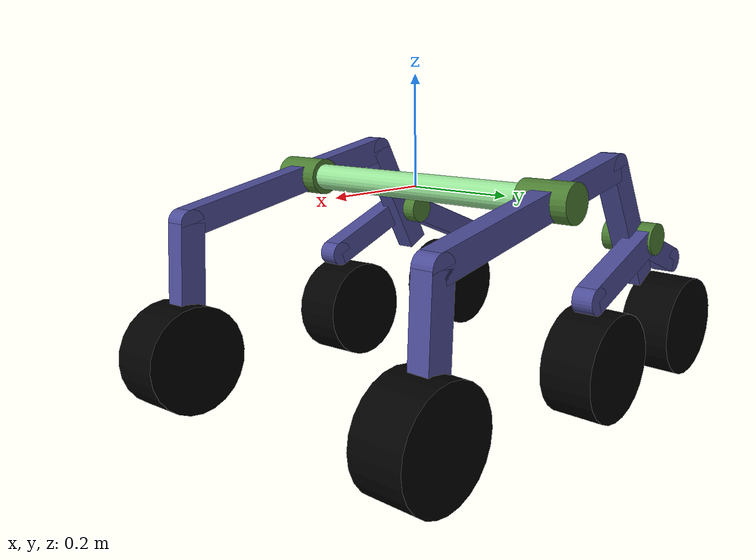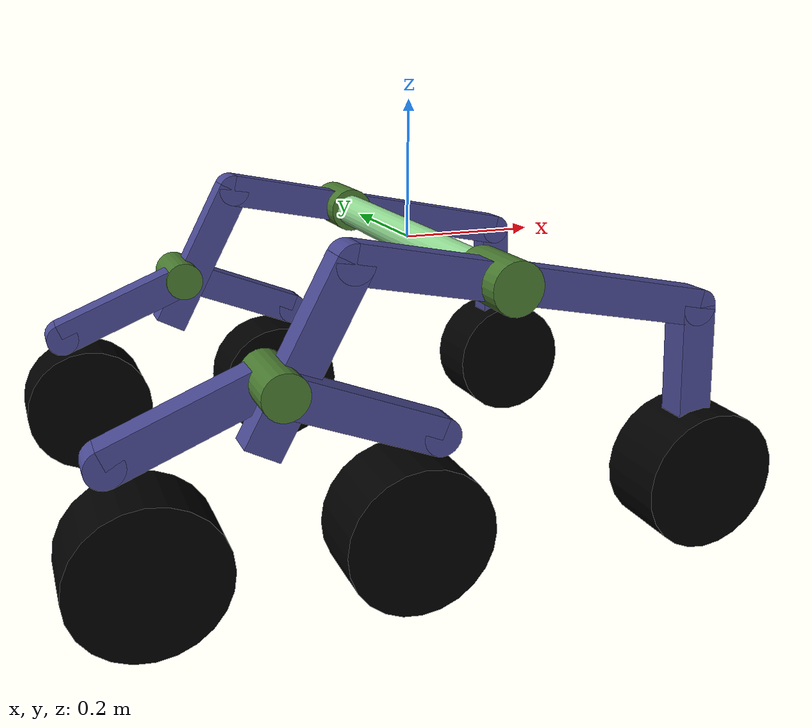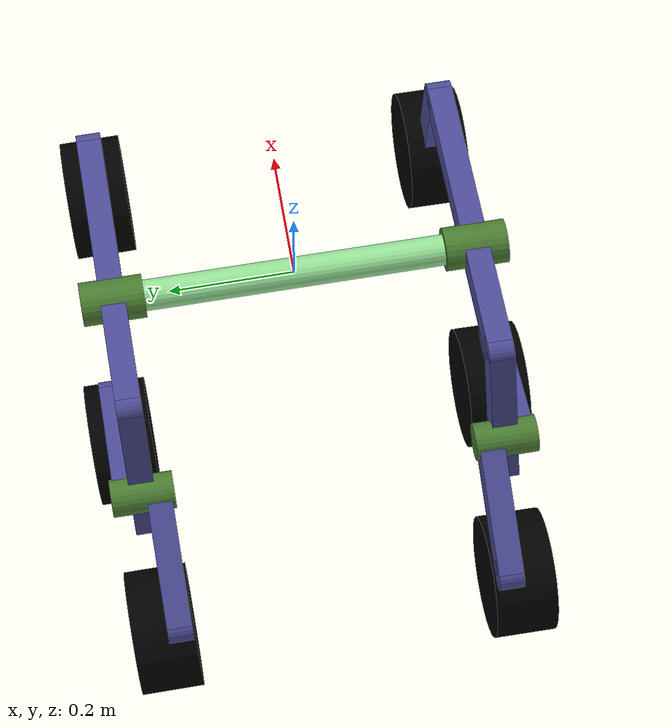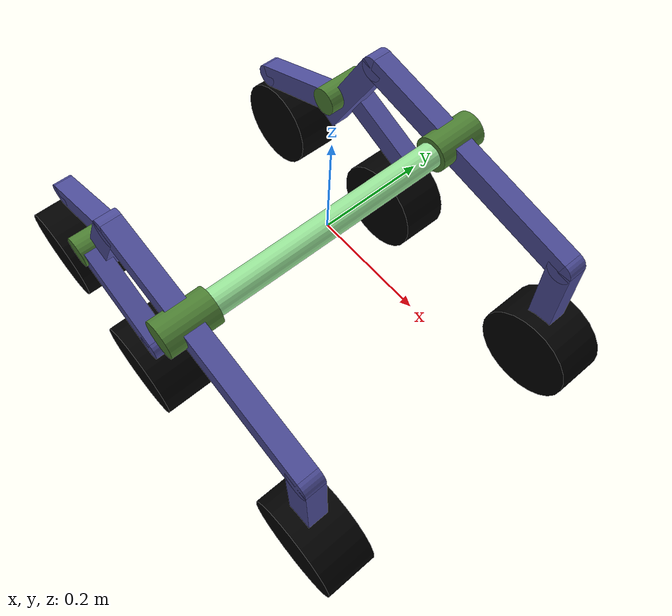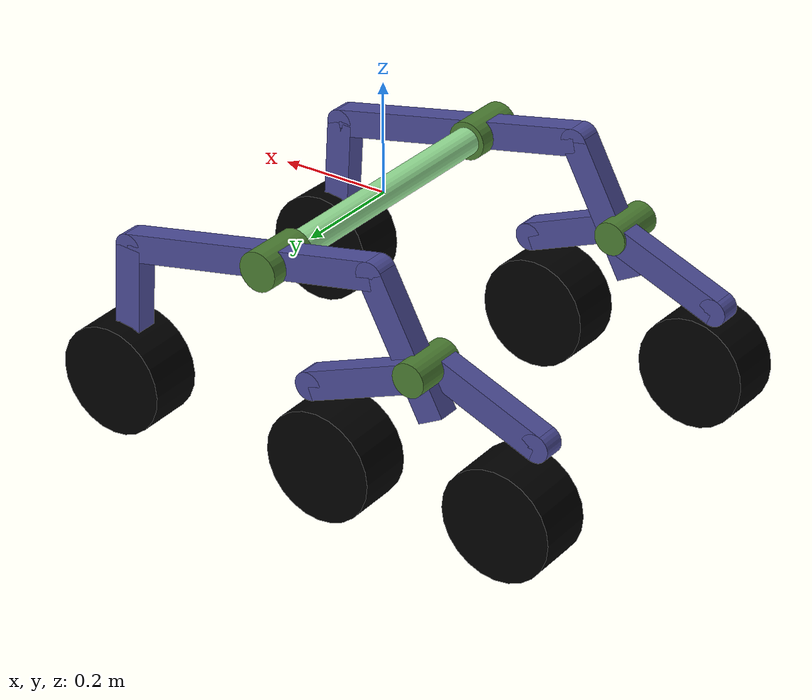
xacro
<?xml version="1.0"?>
<robot xmlns:xacro="http://www.ros.org/wiki/xacro" name="rocker-bogie">

<!-- INCLUDED FILES -->
    <xacro:include filename="rocker/__rocker.xacro"/>
    <xacro:include filename="bogie/__bogie.xacro"/>
    <xacro:include filename="suspension_beam.xacro"/>
    <xacro:include filename="wheel.xacro"/>

<!-- PROPERIES -->
    <!-- SUSPENSION PROPERTIES-->
    <xacro:property name="suspension_width" value=".580"/>

    <xacro:property name="bogie_x" value="-.292"/>
    <xacro:property name="bogie_y" value=" .000"/>
    <xacro:property name="bogie_z" value="-.100"/>

    <xacro:property name="wheel_f_x" value=" .319"/>
    <xacro:property name="wheel_f_y" value=" .000"/>
    <xacro:property name="wheel_f_z" value="-.305"/>

    <xacro:property name="wheel_m_x" value=" .165"/>
    <xacro:property name="wheel_m_y" value=" .020"/>
    <xacro:property name="wheel_m_z" value="-.205"/>

    <xacro:property name="wheel_b_x" value="-.165"/>
    <xacro:property name="wheel_b_y" value="0"/>
    <xacro:property name="wheel_b_z" value="-.205"/>

    <!-- WHEELS POSITIONS -->
    <xacro:property name="wheel_base_f" value=".550"/>
    <xacro:property name="wheel_base_m" value=".600"/>
    <xacro:property name="wheel_base_b" value=".500"/>

    <xacro:property name="h_wheel" value=".250"/>
    <xacro:property name="l_wheel_f" value=".305"/>

    <!-- CUSTOM SIM PROPS -->
    <xacro:property name="h_bogie" value=".170"/>
    <xacro:property name="l_bogie" value=".305"/>
    <xacro:property name="l_wheel_m" value=".200"/>
    <xacro:property name="l_wheel_b" value=".200"/>

    <!-- ELEMENTS DIAMETERS -->
    <xacro:property name="suspension_beam_length" value=".600"/>
    <xacro:property name="suspension_beam_radius" value=".025"/>

    <xacro:property name="rocker_bearing_length" value=".100"/>
    <xacro:property name="rocker_bearing_radius" value=".035"/>

    <xacro:property name="bogie_bearing_length" value=".100"/>
    <xacro:property name="bogie_bearing_radius" value=".030"/>

    <xacro:property name="wheel_width" value=".100"/>
    <xacro:property name="wheel_radius" value=".100"/>

<!-- RELATIVE VARIABLES -->
    <xacro:property name="f_wheel_deviation" value="${(wheel_base_f - wheel_base_m)/2}"/>
    <xacro:property name="b_wheel_deviation" value="${(wheel_base_b - wheel_base_m)/2}"/>
    <xacro:property name="wheel_offset" value=".100"/>

<!-- MAIN LINK -->
    <xacro:suspension_beam name="suspension_beam"/>

<!-- SUSPENSION -->
    <xacro:rocker name="rocker_l" parent="suspension_beam" x="0" y="${suspension_width/2}"    z="0" side="1"/>  <!-- 1 = left -->
    <xacro:rocker name="rocker_r" parent="suspension_beam" x="0" y="${-suspension_width/2}"    z="0" side="-1"/> <!-- -1 = right -->

    <xacro:bogie name="bogie_l" parent="rocker_l_bearing" x="${bogie_x}" y="${bogie_y}"  z="${bogie_z}" side="1"/>
    <xacro:bogie name="bogie_r" parent="rocker_r_bearing" x="${bogie_x}" y="${bogie_y}"  z="${bogie_z}" side="-1"/>

<!-- WHEELS -->
    <xacro:wheel name="fl" parent="rocker_l_bearing" x="${wheel_f_x}" y="${+wheel_f_y}"  z="${wheel_f_z}" side="1"/>
    <xacro:wheel name="fr" parent="rocker_r_bearing" x="${wheel_f_x}" y="${-wheel_f_y}"  z="${wheel_f_z}" side="-1"/>

    <xacro:wheel name="ml" parent="bogie_l_bearing"  x="${wheel_m_x}" y="${+wheel_m_y}"  z="${wheel_m_z}" side="1"/>
    <xacro:wheel name="mr" parent="bogie_r_bearing"  x="${wheel_m_x}" y="${-wheel_m_y}"  z="${wheel_m_z}" side="-1"/>

    <xacro:wheel name="bl" parent="bogie_l_bearing"  x="${wheel_b_x}" y="${+wheel_b_y}"  z="${wheel_b_z}" side="1"/>
    <xacro:wheel name="br" parent="bogie_r_bearing"  x="${wheel_b_x}" y="${-wheel_b_y}"  z="${wheel_b_z}" side="-1"/>

<!-- MY DIFFERENTIAL PLUGIN -->
    <gazebo>
        <plugin name="differential_pid" filename="libDifferentialPID.so">
            <leftJoint>rocker_l_bearing_joint</leftJoint>
            <rightJoint>rocker_r_bearing_joint</rightJoint>
            <topic>/rover/differential_pid</topic>
            <Kp>1000</Kp>
            <Ki>0</Ki>
            <Kd>3000</Kd>
            <limit>10000</limit>
        </plugin>
    </gazebo>

 <!-- DYNAMOMETER PLUGINS -->
    <gazebo>
        <plugin name="rocker_l_bearing_joint_dynamometer" filename="libJointDynamometer.so">
            <joint>rocker_l_bearing_joint</joint>
            <topic>/rover/joint_dynamometer/rocker_l_bearing_joint</topic>
        </plugin>
    </gazebo>

    <gazebo>
        <plugin name="rocker_r_bearing_joint_dynamometer" filename="libJointDynamometer.so">
            <joint>rocker_r_bearing_joint</joint>
            <topic>/rover/joint_dynamometer/rocker_r_bearing_joint</topic>
        </plugin>
    </gazebo>

</robot>

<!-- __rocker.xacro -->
<robot xmlns:xacro="http://www.ros.org/wiki/xacro" name="rocker">

<!-- INCLUDE -->
    <xacro:include filename="rocker_bearing.xacro"/>
    <xacro:include filename="rocker_link1.xacro"/>
    <xacro:include filename="rocker_link2.xacro"/>
    <xacro:include filename="rocker_link3.xacro"/>
    <xacro:include filename="rocker_link_diff.xacro"/>

<!-- PROPERTIES -->
    <xacro:property name="rocker_link1_length"      value=".500"/>
    <xacro:property name="rocker_link1_width"       value=".040"/>
    <xacro:property name="rocker_link1_height"      value=".050"/>
    <xacro:property name="rocker_link1_x"            value=".000"/>
    <xacro:property name="rocker_link1_y"            value=".000"/>
    <xacro:property name="rocker_link1_z"            value=".000"/>
    <xacro:property name="rocker_link1_offset_x"    value=".050"/>
    <xacro:property name="rocker_link1_offset_y"    value=".000"/>
    <xacro:property name="rocker_link1_offset_z"    value=".000"/>
    <xacro:property name="rocker_link1_pitch"        value="-.2"/>

    <xacro:property name="rocker_link2_length"      value=".250"/>
    <xacro:property name="rocker_link2_width"       value=".040"/>
    <xacro:property name="rocker_link2_height"      value=".050"/>
    <xacro:property name="rocker_link2_x"            value="${-rocker_link1_length/2+rocker_link1_offset_x}"/>
    <xacro:property name="rocker_link2_y"            value=".000"/>
    <xacro:property name="rocker_link2_z"            value=".000"/>
    <xacro:property name="rocker_link2_offset_x"    value="${-rocker_link2_length/2}"/>
    <xacro:property name="rocker_link2_offset_y"    value=".000"/>
    <xacro:property name="rocker_link2_offset_z"    value=".000"/>
    <xacro:property name="rocker_link2_pitch"        value="1.28"/>

    <xacro:property name="rocker_link3_length"      value=".190"/>
    <xacro:property name="rocker_link3_width"       value=".040"/>
    <xacro:property name="rocker_link3_height"      value=".050"/>
    <xacro:property name="rocker_link3_x"            value="${rocker_link1_length/2+rocker_link1_offset_x}"/>
    <xacro:property name="rocker_link3_y"            value=".000"/>
    <xacro:property name="rocker_link3_z"            value=".000"/>
    <xacro:property name="rocker_link3_offset_x"    value="${rocker_link3_length/2}"/>
    <xacro:property name="rocker_link3_offset_y"    value=".000"/>
    <xacro:property name="rocker_link3_offset_z"    value=".000"/>
    <xacro:property name="rocker_link3_pitch"        value="-1.31"/>

    <xacro:property name="link_diff_lenght" value=".100"/>
    <xacro:property name="link_diff_radius" value=".005"/>

<!-- LINKS -->

    <xacro:macro name="rocker" params="name parent x y z side">

        <xacro:rocker_bearing name="${name}_bearing" parent="${parent}" x="${x}" y="${y}" z="${z}" side="${side}"/>

        <xacro:rocker_link1 name="${name}_link1" parent="${name}_bearing"
            x="${rocker_link1_x}" y="${-rocker_link1_y}"  z="${rocker_link1_z}"
            pitch="${-rocker_link1_pitch}"/>

        <xacro:rocker_link2 name="${name}_link2" parent="${name}_link1"
            x="${rocker_link2_x}" y="${-rocker_link2_y}"  z="${rocker_link2_z}"
            pitch="${-rocker_link2_pitch}"/>

        <xacro:rocker_link3 name="${name}_link3" parent="${name}_link1"
            x="${rocker_link3_x}" y="${-rocker_link3_y}"  z="${rocker_link3_z}"
            pitch="${-rocker_link3_pitch}"/>

    </xacro:macro>
</robot>

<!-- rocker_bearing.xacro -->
<robot xmlns:xacro="http://www.ros.org/wiki/xacro" name="rocker">

<!-- GEOMETRY -->
    <xacro:macro name="rocker_geometry">
        <origin rpy="1.57075 0 0"/>
        <geometry>
            <cylinder length="${rocker_bearing_length}" radius="${rocker_bearing_radius}"/>
        </geometry>
    </xacro:macro>

<!-- MATERIAL -->
    <xacro:macro name="rocker_material">
        <material name="dark_green">
            <color rgba=".3 .5 .2 1"/>
        </material>
    </xacro:macro>

<!-- LINK -->
    <xacro:macro name="rocker_bearing" params="name parent x y z side">
        <link name="${name}">
            <visual>
                <xacro:rocker_geometry/>
                <xacro:rocker_material/>
            </visual>
            <collision>
                <xacro:rocker_geometry/>
            </collision>
            <inertial>
                <mass value="3"/>
                <xacro:if value="${side == 1}"> <!-- LEFT-->
                    <origin xyz="0.247725 0.035298 -0.066751" rpy="0 0 0"/>
                    <inertia ixx="0.050813" ixy="0.009439" ixz="-0.021963" iyy="0.135830" iyz="0.004023" izz="0.097893"/>
                </xacro:if>
                <xacro:if value="${side == -1}"> <!-- RIGHT-->
                    <origin xyz="0.247727 -0.035298 -0.066751" rpy="0 0 0"/>
                    <inertia ixx="0.050813" ixy="-0.009439" ixz="-0.021960" iyy="0.135831" iyz="-0.004023" izz="0.097894"/>
                </xacro:if>
            </inertial>
        </link>

            <joint name="${name}_joint" type="revolute">
                <parent link="${parent}"/>
                <child link="${name}"/>
                <origin rpy="0 0 0" xyz="${x} ${y} ${z}"/>
                <axis xyz="0 1 0"/>
                <limit effort="10000" velocity="1" lower="-0.5" upper="0.5"/>
                <dynamics damping="2" friction="0"/>
            </joint>

            <gazebo reference="${name}">
                <mu1> .2 </mu1>
                <mu2> .2 </mu2>
                <material> Gazebo/Grey </material>
                <selfCollide> True </selfCollide>
            </gazebo>

    </xacro:macro>

</robot>

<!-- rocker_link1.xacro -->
<robot xmlns:xacro="http://www.ros.org/wiki/xacro" name="rocker_link1">

<!-- GEOMETRY -->
    <xacro:macro name="rocker_link1_geometry_1">
        <origin rpy="0 0 0" xyz="${rocker_link1_offset_x} ${rocker_link1_offset_y} ${rocker_link1_offset_z}" />
        <geometry>
            <box size="${rocker_link1_length} ${rocker_link1_width} ${rocker_link1_height}"/>
        </geometry>
    </xacro:macro>

    <xacro:macro name="rocker_link1_geometry_2">
        <origin rpy="1.57075 0 0" xyz="${-rocker_link1_length/2+rocker_link1_offset_x} ${rocker_link1_offset_y} ${rocker_link1_offset_z}" />
        <geometry>
            <cylinder length="${rocker_link1_width}" radius="${rocker_link1_height/2}"/>
        </geometry>
    </xacro:macro>

    <xacro:macro name="rocker_link1_geometry_3">
        <origin rpy="1.57075 0 0" xyz="${rocker_link1_length/2+rocker_link1_offset_x} ${rocker_link1_offset_y} ${rocker_link1_offset_z}" />
        <geometry>
            <cylinder length="${rocker_link1_width}" radius="${rocker_link1_height/2}"/>
        </geometry>
    </xacro:macro>

<!-- MATERIAL -->
    <xacro:macro name="rocker_link1_material">
        <material name="light_blue">
            <color rgba=".3 .3 .6 1"/>
        </material>
    </xacro:macro>

<!-- LINK -->
    <xacro:macro name="rocker_link1" params="name parent x y z pitch">
        <link name="${name}">
            <visual>
                <xacro:rocker_link1_geometry_1/>
                <xacro:rocker_link1_material/>
            </visual>
            <visual>
                <xacro:rocker_link1_geometry_2/>
                <xacro:rocker_link1_material/>
            </visual>
            <visual>
                <xacro:rocker_link1_geometry_3/>
                <xacro:rocker_link1_material/>
            </visual>
            <collision>
                <xacro:rocker_link1_geometry_1/>
            </collision>
            <collision>
                <xacro:rocker_link1_geometry_2/>
            </collision>
            <collision>
                <xacro:rocker_link1_geometry_3/>
            </collision>
            <inertial>
                 <origin rpy="0 0 0" xyz="${rocker_link1_offset_x} ${rocker_link1_offset_y} ${rocker_link1_offset_z}" />
                 <mass value="0"/>
                 <inertia ixx="0" ixy="0" ixz="0" iyy="0" iyz="0" izz="0"/>
            </inertial>
        </link>
        <gazebo reference="${name}">
            <mu1> .2 </mu1>
            <mu2> .2 </mu2>
            <material> Gazebo/Blue </material>
            <selfCollide>True</selfCollide>
        </gazebo>

        <joint name="${name}_joint" type="fixed">
            <parent link="${parent}"/>
            <child link="${name}"/>
            <origin rpy="0 ${pitch} 0" xyz="${x} ${y} ${z}"/>
        </joint>

    </xacro:macro>
</robot>

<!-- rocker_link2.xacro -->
<robot xmlns:xacro="http://www.ros.org/wiki/xacro" name="rocker_link2">

<!-- GEOMETRY -->
    <xacro:macro name="rocker_link2_geometry">
        <origin rpy="0 0 0" xyz="${rocker_link2_offset_x} ${rocker_link2_offset_y} ${rocker_link2_offset_z} " />
        <geometry>
            <box size="${rocker_link2_length} ${rocker_link2_width} ${rocker_link2_height}"/>
        </geometry>
    </xacro:macro>

<!-- MATERIAL -->
    <xacro:macro name="rocker_link2_material">
        <material name="light_blue">
            <color rgba=".3 .3 .6 1"/>
        </material>
    </xacro:macro>

<!-- LINK -->
    <xacro:macro name="rocker_link2" params="name parent x y z pitch">
        <link name="${name}">
            <visual>
                <xacro:rocker_link2_geometry/>
                <xacro:rocker_link2_material/>
            </visual>x
            <collision>
                <xacro:rocker_link2_geometry/>
            </collision>
            <inertial>
                 <origin rpy="0 0 0" xyz="${rocker_link2_offset_x} ${rocker_link2_offset_y} ${rocker_link2_offset_z}" />
                 <mass value="0"/>
                 <inertia ixx="0" ixy="0" ixz="0" iyy="0" iyz="0" izz="0"/>
            </inertial>
        </link>
        <gazebo reference="${name}">
            <mu1> .2 </mu1>
            <mu2> .2 </mu2>
            <material> Gazebo/Blue </material>
            <selfCollide>True</selfCollide>
        </gazebo>

        <joint name="${name}_joint" type="fixed">
            <parent link="${parent}"/>
            <child link="${name}"/>
            <origin rpy="0 ${pitch} 0" xyz="${x} ${y} ${z}"/>
        </joint>

    </xacro:macro>
</robot>

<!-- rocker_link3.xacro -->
<robot xmlns:xacro="http://www.ros.org/wiki/xacro" name="rocker_link3">

<!-- GEOMETRY -->
    <xacro:macro name="rocker_link3_geometry_1">
        <origin rpy="0 0 0" xyz="${rocker_link3_offset_x} ${rocker_link3_offset_y} ${rocker_link3_offset_z} " />
        <geometry>
            <box size="${rocker_link3_length} ${rocker_link3_width} ${rocker_link3_height}"/>
        </geometry>
    </xacro:macro>

    <xacro:macro name="rocker_link3_geometry_2">
        <origin rpy="1.57075 0 0" xyz="${rocker_link3_length/2 + rocker_link3_offset_x} ${rocker_link3_offset_y} ${rocker_link3_offset_z}" />
        <geometry>
            <cylinder length="${rocker_link3_width}" radius="${rocker_link3_height/2}"/>
        </geometry>
    </xacro:macro>

<!-- MATERIAL -->
    <xacro:macro name="rocker_link3_material">
        <material name="light_blue">
            <color rgba=".3 .3 .6 1"/>
        </material>
    </xacro:macro>

<!-- LINK -->
    <xacro:macro name="rocker_link3" params="name parent x y z pitch">
        <link name="${name}">
            <visual>
                <xacro:rocker_link3_geometry_1/>
                <xacro:rocker_link3_material/>
            </visual>
            <visual>
                <xacro:rocker_link3_geometry_2/>
                <xacro:rocker_link3_material/>
            </visual>
            <collision>
                <xacro:rocker_link3_geometry_1/>
            </collision>
            <collision>
                <xacro:rocker_link3_geometry_2/>
            </collision>
            <inertial>
                 <origin rpy="0 0 0" xyz="${rocker_link3_offset_x} ${rocker_link3_offset_y} ${rocker_link3_offset_z} " />
                 <mass value="2"/>
                 <inertia ixx=".003" ixy="0.000" ixz="0.000" iyy=".003" iyz="0.000" izz=".003"/>
            </inertial>
        </link>
        <gazebo reference="${name}">
            <mu1> .2 </mu1>
            <mu2> .2 </mu2>
            <material> Gazebo/Blue </material>
            <selfCollide>True</selfCollide>
        </gazebo>

        <joint name="${name}_joint" type="fixed">
            <parent link="${parent}"/>
            <child link="${name}"/>
            <origin rpy="0 ${pitch} 0" xyz="${x} ${y} ${z}"/>
        </joint>

    </xacro:macro>
</robot>

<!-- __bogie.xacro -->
<robot xmlns:xacro="http://www.ros.org/wiki/xacro" name="bogie">

<!-- INCLUDE -->
    <xacro:include filename="bogie_bearing.xacro"/>
    <xacro:include filename="bogie_link1.xacro"/>
    <xacro:include filename="bogie_link2.xacro"/>

<!-- PROPERTIES -->
    <xacro:property name="bogie_link1_length"      value=".215"/>
    <xacro:property name="bogie_link1_width"       value=".040"/>
    <xacro:property name="bogie_link1_height"      value=".050"/>
    <xacro:property name="bogie_link1_x"            value=".000"/>
    <xacro:property name="bogie_link1_y"            value=".000"/>
    <xacro:property name="bogie_link1_z"            value=".000"/>
    <xacro:property name="bogie_link1_offset_x"    value="${bogie_link1_length/2}"/>
    <xacro:property name="bogie_link1_offset_y"    value=".025"/>
    <xacro:property name="bogie_link1_offset_z"    value=".000"/>
    <xacro:property name="bogie_link1_pitch"        value="-0.38"/>

    <xacro:property name="bogie_link2_length"      value=".215"/>
    <xacro:property name="bogie_link2_width"       value=".040"/>
    <xacro:property name="bogie_link2_height"      value=".050"/>
    <xacro:property name="bogie_link2_x"            value=".000"/>
    <xacro:property name="bogie_link2_y"            value=".000"/>
    <xacro:property name="bogie_link2_z"            value=".000"/>
    <xacro:property name="bogie_link2_offset_x"    value="${-bogie_link2_length/2}"/>
    <xacro:property name="bogie_link2_offset_y"    value="-.025"/>
    <xacro:property name="bogie_link2_offset_z"    value=".000"/>
    <xacro:property name="bogie_link2_pitch"        value="0.38"/>

<!-- LINKS -->
    <xacro:macro name="bogie" params="name parent x y z side">

        <xacro:bogie_bearing name="${name}_bearing" parent="${parent}" x="${x}" y="${y}" z="${z}" side="${side}"/>

        <xacro:bogie_link1 name="${name}_link1" parent="${name}_bearing"
            x="${bogie_link1_x}" y="${-bogie_link1_y}"  z="${bogie_link1_z}"
            pitch="${-bogie_link1_pitch}" side="${side}"/>

        <xacro:bogie_link2 name="${name}_link2" parent="${name}_bearing"
            x="${bogie_link2_x}" y="${-bogie_link2_y}"  z="${bogie_link2_z}"
            pitch="${-bogie_link2_pitch}" side="${side}"/>

    </xacro:macro>

</robot>

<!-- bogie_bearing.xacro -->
<robot xmlns:xacro="http://www.ros.org/wiki/xacro" name="bogie_bearing">

<!-- GEOMETRY -->
    <xacro:macro name="bogie_bearing_geometry">
        <origin rpy="1.57075 0 0"/>
        <geometry>
            <cylinder length="${bogie_bearing_length}" radius="${bogie_bearing_radius}"/>
        </geometry>
    </xacro:macro>

<!-- MATERIAL -->
    <xacro:macro name="bogie_bearing_material">
        <material name="dark_green">
            <color rgba=".3 .5 .2 1"/>
        </material>
    </xacro:macro>

<!-- LINK -->
    <xacro:macro name="bogie_bearing" params="name parent x y z side">
        <link name="${name}">
            <visual>
                <xacro:bogie_bearing_geometry/>
                <xacro:bogie_bearing_material/>
            </visual>
            <collision>
                <xacro:bogie_bearing_geometry/>
            </collision>
            <inertial>
                <mass value="6.143721"/>
                <xacro:if value="${side == 1}"> <!-- LEFT-->
                    <origin xyz="-0.000010 0.045682 0.012347" rpy="0 0 0"/>
                    <inertia ixx="0.082737" ixy="0.015401" ixz="-0.000002" iyy="0.236740" iyz="0.013790" izz="0.176983"/>
                </xacro:if>
                <xacro:if value="${side == -1}"> <!-- RIGHT-->
                    <origin xyz="-0.000007 -0.045682 0.012347" rpy="0 0 0"/>
                    <inertia ixx="0.082737" ixy="-0.015402" ixz="0.000003" iyy="0.236740" iyz="-0.013790" izz="0.176983"/>
                </xacro:if>
            </inertial>
        </link>

            <joint name="${name}_joint" type="revolute">
                <parent link="${parent}"/>
                <child link="${name}"/>
                <origin rpy="0 0 0" xyz="${x} ${y} ${z}"/>
                <axis xyz="0 1 0"/>
                <limit effort="1" velocity="1" lower="-0.5" upper="0.5"/>
                <dynamics damping="1"/>
            </joint>

            <gazebo reference="${name}">
                <mu1> .2 </mu1>
                <mu2> .2 </mu2>
                <material> Gazebo/Grey </material>
                <selfCollide> True </selfCollide>
            </gazebo>

            <transmission name="${name}_transmission">
                <type>transmission_interface/SimpleTransmission</type>
                <joint name="${name}_joint">
                    <hardwareInterface>EffortJointInterface</hardwareInterface>
                </joint>
                <actuator name="${name}_motor">
                    <hardwareInterface>EffortJointInterface</hardwareInterface>
                    <mechanicalReduction>1</mechanicalReduction>
                </actuator>
            </transmission>

    </xacro:macro>

</robot>

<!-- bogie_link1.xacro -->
<robot xmlns:xacro="http://www.ros.org/wiki/xacro" name="bogie_link1">

<!-- GEOMETRY -->
    <xacro:macro name="bogie_link1_geometry_1">
        <origin rpy="0 0 0" xyz="${bogie_link1_offset_x} ${bogie_link1_offset_y*side} ${bogie_link1_offset_z}" />
        <geometry>
            <box size="${bogie_link1_length} ${bogie_link1_width} ${bogie_link1_height}"/>
        </geometry>
    </xacro:macro>

    <xacro:macro name="bogie_link1_geometry_2" params="side">
        <origin rpy="1.57075 0 0" xyz="${bogie_link1_length/2 + bogie_link1_offset_x} ${bogie_link1_offset_y*side} ${bogie_link1_offset_z}" />
        <geometry>
            <cylinder length="${bogie_link1_width}" radius="${bogie_link1_height/2}"/>
        </geometry>
    </xacro:macro>

<!-- MATERIAL -->
    <xacro:macro name="bogie_link1_material">
        <material name="light_blue">
            <color rgba=".3 .3 .6 1"/>
        </material>
    </xacro:macro>

<!-- LINK -->
    <xacro:macro name="bogie_link1" params="name parent x y z pitch side">
        <link name="${name}">
            <visual>
                <xacro:bogie_link1_geometry_1/>
                <xacro:bogie_link1_material/>
            </visual>
            <visual>
                <xacro:bogie_link1_geometry_2 side="${side}"/>
                <xacro:bogie_link1_material/>
            </visual>
            <collision>
                <xacro:bogie_link1_geometry_1/>
            </collision>
            <collision>
                <xacro:bogie_link1_geometry_2 side="${side}"/>
            </collision>

            <inertial>
                 <origin rpy="0 0 0" xyz="${bogie_link1_offset_x} ${bogie_link1_offset_y*side} ${bogie_link1_offset_z}" />
                 <mass value="2"/>
                 <inertia ixx=".003" ixy="0.000" ixz="0.000" iyy=".003" iyz="0.000" izz=".003"/>
            </inertial>
        </link>
        <gazebo reference="${name}">
            <mu1> .2 </mu1>
            <mu2> .2 </mu2>
            <material> Gazebo/Blue </material>
            <selfCollide>True</selfCollide>
        </gazebo>

        <joint name="${name}_joint" type="fixed">
            <parent link="${parent}"/>
            <child link="${name}"/>
            <origin rpy="0 ${pitch} 0" xyz="${x} ${y} ${z}"/>
        </joint>

    </xacro:macro>
</robot>

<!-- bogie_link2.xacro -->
<robot xmlns:xacro="http://www.ros.org/wiki/xacro" name="bogie_link2">

<!-- GEOMETRY -->
    <xacro:macro name="bogie_link2_geometry_1">
        <origin rpy="0 0 0" xyz="${bogie_link2_offset_x} ${bogie_link2_offset_y*side} ${bogie_link2_offset_z}" />
        <geometry>
            <box size="${bogie_link2_length} ${bogie_link2_width} ${bogie_link2_height}"/>
        </geometry>
    </xacro:macro>

    <xacro:macro name="bogie_link2_geometry_2" params="side">
        <origin rpy="1.57075 0 0" xyz="${-bogie_link2_length/2 + bogie_link2_offset_x} ${bogie_link2_offset_y*side} ${bogie_link2_offset_z}" />
        <geometry>
            <cylinder length="${bogie_link2_width}" radius="${bogie_link2_height/2}"/>
        </geometry>
    </xacro:macro>

<!-- MATERIAL -->
    <xacro:macro name="bogie_link2_material">
        <material name="light_blue">
            <color rgba=".3 .3 .6 1"/>
        </material>
    </xacro:macro>

<!-- LINK -->
    <xacro:macro name="bogie_link2" params="name parent x y z pitch side">
        <link name="${name}">
            <visual>
                <xacro:bogie_link2_geometry_1/>
                <xacro:bogie_link2_material/>
            </visual>
            <visual>
                <xacro:bogie_link2_geometry_2 side="${side}"/>
                <xacro:bogie_link2_material/>
            </visual>
            <collision>
                <xacro:bogie_link2_geometry_1/>
            </collision>
            <collision>
                <xacro:bogie_link2_geometry_2 side="${side}"/>
            </collision>
            <inertial>
                 <origin rpy="0 0 0" xyz="${bogie_link2_offset_x} ${bogie_link2_offset_y*side} ${bogie_link2_offset_z}" />
                 <mass value="0"/>
                 <inertia ixx="0" ixy="0" ixz="0" iyy="0" iyz="0" izz="0"/>
            </inertial>
        </link>
        <gazebo reference="${name}">
            <mu1> .2 </mu1>
            <mu2> .2 </mu2>
            <material> Gazebo/Blue </material>
            <selfCollide>True</selfCollide>
        </gazebo>

        <joint name="${name}_joint" type="fixed">
            <parent link="${parent}"/>
            <child link="${name}"/>
            <origin rpy="0 ${pitch} 0" xyz="${x} ${y} ${z}"/>
        </joint>

    </xacro:macro>
</robot>

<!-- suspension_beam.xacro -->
<robot xmlns:xacro="http://www.ros.org/wiki/xacro" name="suspension_beam">

<!-- GEOMETRY -->
    <xacro:macro name="suspension_beam_geometry">
        <origin rpy="1.57075 0 0" xyz="0 0 0"/>
        <geometry>
            <cylinder length="${suspension_beam_length}" radius="${suspension_beam_radius}"/>
        </geometry>
    </xacro:macro>

<!-- MATERIAL -->
    <xacro:macro name="suspension_beam_material">
        <material name="light_green">
            <color rgba=".6 .9 .6 1"/>
        </material>
    </xacro:macro>

<!-- LINK -->
    <xacro:macro name="suspension_beam" params="name">

    <!-- DUMMY LINK -->
        <link name="base_link">
        </link>
        <joint name="base_jonit" type="fixed">
            <parent link="base_link"/>
            <child link="${name}"/>
        </joint>

    <!-- MAIN LINK -->
        <link name="${name}">
            <visual>
                <xacro:suspension_beam_geometry/>
                <xacro:suspension_beam_material/>
            </visual>
            <collision>
                <xacro:suspension_beam_geometry/>
            </collision>
            <inertial>
                <mass value="0.001"/>
                <inertia ixx="0.000005" ixy="0" ixz="0" iyy="0.000005" iyz="0" izz="0.000005"/>
            </inertial>
        </link>

        <gazebo reference="base_link">
            <mu1> .2 </mu1>
            <mu2> .2 </mu2>
            <material> Gazebo/Wh </material>
            <selfCollide> True </selfCollide>
        </gazebo>

    </xacro:macro>

</robot>

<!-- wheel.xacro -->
<robot xmlns:xacro="http://www.ros.org/wiki/xacro" name="wheel">

<!-- GEOMETRY -->
    <xacro:macro name="wheel_geometry">
        <origin rpy="1.57075 0 0"/>
        <geometry>
            <cylinder length="${wheel_width}" radius="${wheel_radius}"/>
        </geometry>
    </xacro:macro>

<!-- MATERIAL -->
    <xacro:macro name="wheel_material">
        <material name="black">
            <color rgba=".0 .0 .0 1"/>
        </material>
    </xacro:macro>

<!-- LINK -->
    <xacro:macro name="wheel" params="name parent x y z side">

        <link name="wheel_${name}">
            <visual>
                <xacro:wheel_geometry/>
                <xacro:wheel_material/>
            </visual>
            <collision>
                <xacro:wheel_geometry/>
            </collision>
            <inertial>
                 <mass value="1.67"/>
                 <origin xyz="0 0 0" rpy="0 0 0"/>
                 <inertia ixx=".007228" ixy="0" ixz="0" iyy=".011596" iyz="0" izz=".007228"/>
            </inertial>
        </link>

        <gazebo reference="wheel_${name}">
            <mu1 value="0.5"/>
            <mu2 value="0.5"/>
            <material value="Gazebo/Black"/>
            <selfCollide value="True"/>
        </gazebo>

        <joint name="wheel_${name}_joint" type="continuous">
            <parent link="${parent}"/>
            <child link="wheel_${name}"/>
            <origin rpy="${-side*0.02} 0 0" xyz="${x} ${y} ${z}"/>
            <axis xyz="0 1 0"/>
            <limit effort="100" velocity="10"/>
            <dynamics damping="1"/>
        </joint>

        <gazebo reference="wheel_${name}_joint">
            <provideFeedback value="true"/>
        </gazebo>

        <gazebo>
            <plugin name="wheel_${name}_joint_limiter" filename="libJointLimiter.so">
                <joint>wheel_${name}_joint</joint>
                <topic>/rover/wheel_${name}_velocity_controller</topic>
                <lower>-9999999</lower>
                <upper>9999999</upper>
            </plugin>
        </gazebo>
        <gazebo>
            <plugin name="wheel_${name}_controller" filename="libControllerPID.so">
                <joint>wheel_${name}_joint</joint>
                <topic>/rover/wheel_${name}_velocity_controller</topic>
                <Kp>2</Kp>
                <Ki>0.1</Ki>
                <Kd>0.1</Kd>
                <limit>100</limit>
            </plugin>
        </gazebo>

    </xacro:macro>
</robot>
